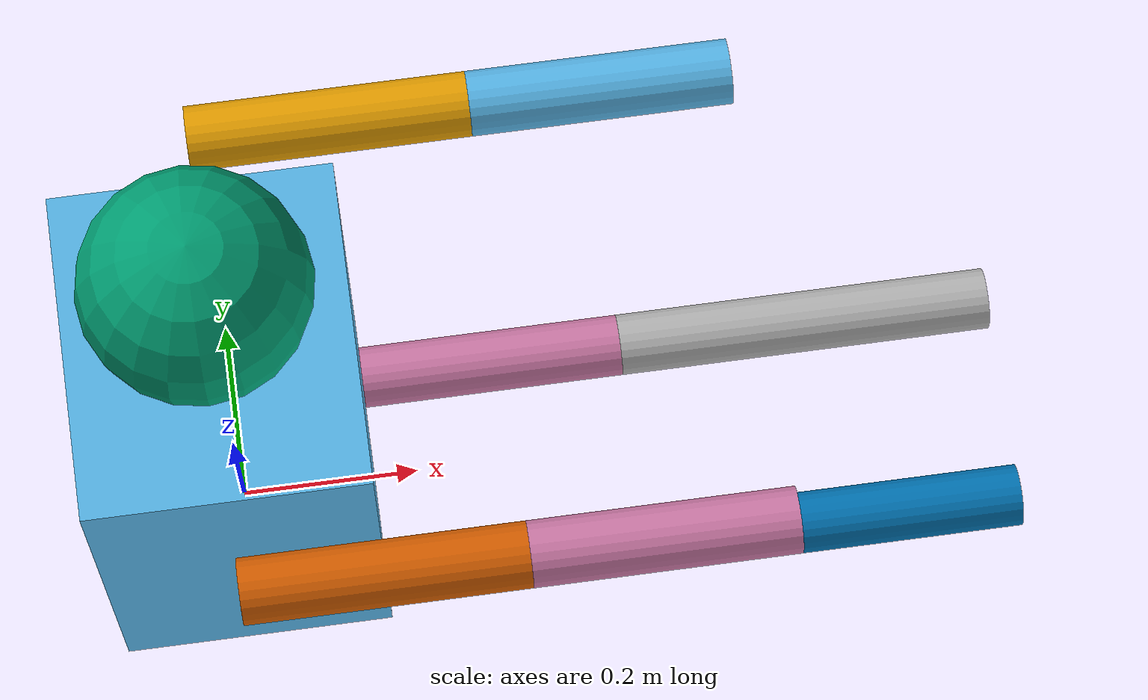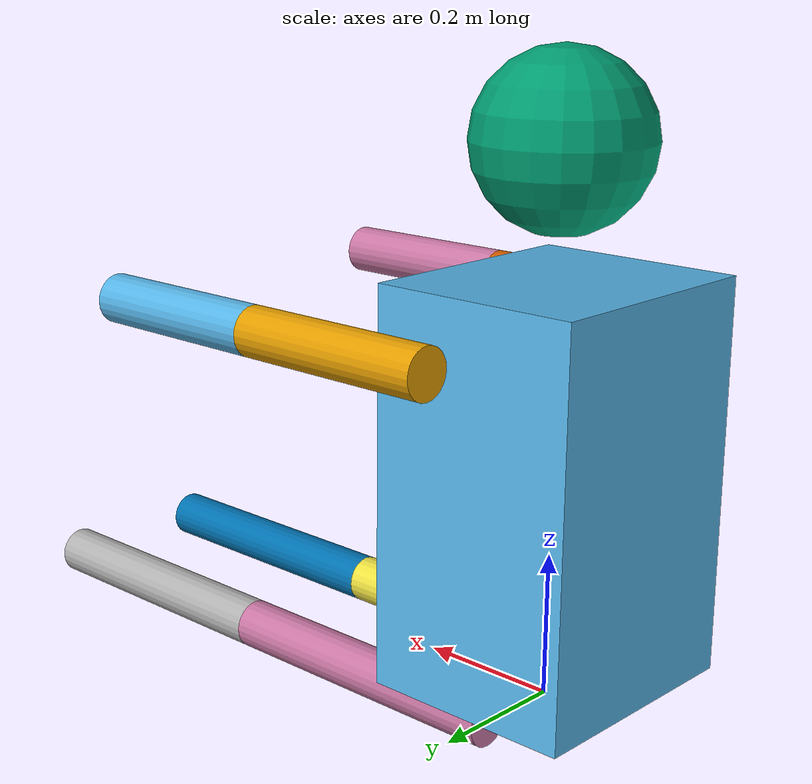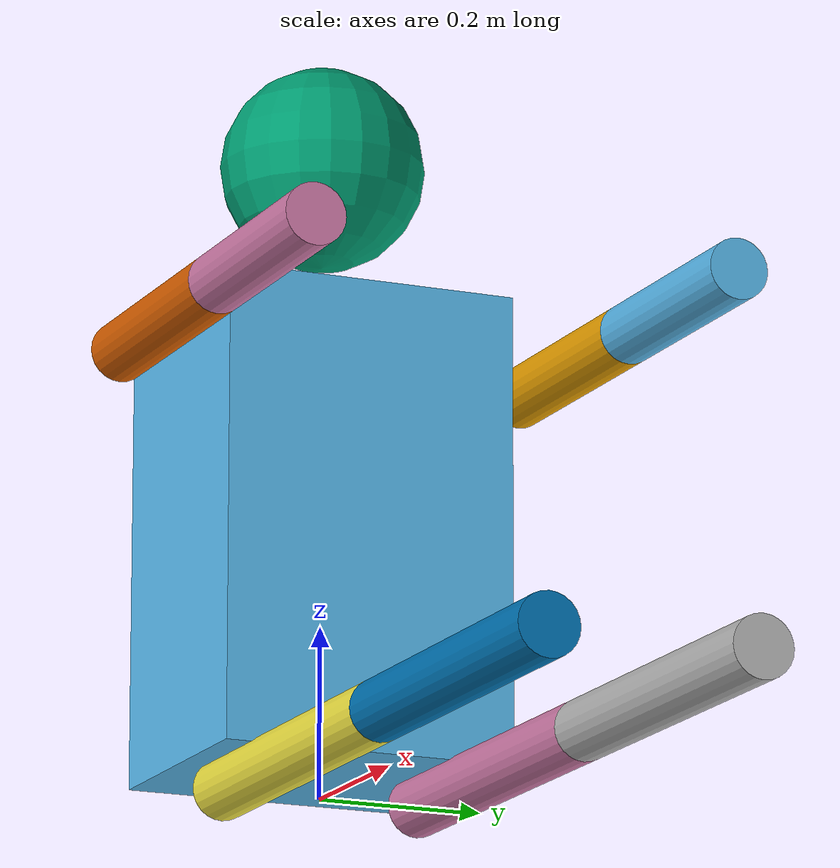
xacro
<?xml version="1.0"?>
<robot xmlns:xacro="http://www.ros.org/wiki/xacro" name="powersuit">

  <xacro:property name="arm_l1" value="0.30"/>
  <xacro:property name="arm_l2" value="0.28"/>
  <xacro:property name="leg_l1" value="0.45"/>
  <xacro:property name="leg_l2" value="0.43"/>

  <xacro:macro name="stub_inertial" params="mass">
    <inertial>
      <mass value="${mass}"/>
      <inertia ixx="0.01" ixy="0" ixz="0" iyy="0.01" iyz="0" izz="0.01"/>
    </inertial>
  </xacro:macro>

  <xacro:macro name="seg_link" params="name length mass">
    <link name="${name}">
      <visual>
        <origin xyz="${length/2} 0 0" rpy="0 ${pi/2} 0"/>
        <geometry><cylinder radius="0.035" length="${length}"/></geometry>
      </visual>
      <xacro:stub_inertial mass="${mass}"/>
    </link>
  </xacro:macro>

  <!-- limb: 2-link planar chain in the limb root frame (X forward, Y up-plane) -->
  <xacro:macro name="limb" params="prefix j1 j2 l1 l2 x y z">
    <joint name="${prefix}_root_joint" type="fixed">
      <parent link="torso"/>
      <child link="${prefix}_root"/>
      <origin xyz="${x} ${y} ${z}"/>
    </joint>
    <link name="${prefix}_root"><xacro:stub_inertial mass="0.2"/></link>

    <joint name="${prefix}_${j1}" type="revolute">
      <parent link="${prefix}_root"/>
      <child link="${prefix}_upper"/>
      <axis xyz="0 0 1"/>
      <limit lower="-2.62" upper="2.62" effort="60" velocity="6"/>
    </joint>
    <xacro:seg_link name="${prefix}_upper" length="${l1}" mass="1.2"/>

    <joint name="${prefix}_${j2}" type="revolute">
      <parent link="${prefix}_upper"/>
      <child link="${prefix}_lower"/>
      <origin xyz="${l1} 0 0"/>
      <axis xyz="0 0 1"/>
      <limit lower="-2.80" upper="2.80" effort="60" velocity="6"/>
    </joint>
    <xacro:seg_link name="${prefix}_lower" length="${l2}" mass="0.9"/>
  </xacro:macro>

  <!-- base + torso -->
  <link name="base_link"><xacro:stub_inertial mass="1.0"/></link>
  <joint name="torso_joint" type="fixed">
    <parent link="base_link"/>
    <child link="torso"/>
    <origin xyz="0 0 0.30"/>
  </joint>
  <link name="torso">
    <visual><geometry><box size="0.30 0.35 0.55"/></geometry></visual>
    <xacro:stub_inertial mass="8.0"/>
  </link>

  <!-- helmet -->
  <joint name="helmet_joint" type="fixed">
    <parent link="torso"/>
    <child link="helmet"/>
    <origin xyz="0 0 0.45"/>
  </joint>
  <link name="helmet">
    <visual><geometry><sphere radius="0.12"/></geometry></visual>
    <xacro:stub_inertial mass="1.5"/>
  </link>

  <!-- torso-rigid IMU on the flight pack (network-map §12.6) -->
  <joint name="imu_torso_joint" type="fixed">
    <parent link="torso"/>
    <child link="imu_torso"/>
    <origin xyz="-0.14 0 0.10"/>
  </joint>
  <link name="imu_torso"><xacro:stub_inertial mass="0.05"/></link>

  <!-- limbs; roots offset from torso center -->
  <xacro:limb prefix="arm_right" j1="elbow" j2="wrist"
              l1="${arm_l1}" l2="${arm_l2}" x="0.0" y="-0.25" z="0.20"/>
  <xacro:limb prefix="arm_left" j1="elbow" j2="wrist"
              l1="${arm_l1}" l2="${arm_l2}" x="0.0" y="0.25" z="0.20"/>
  <xacro:limb prefix="leg_right" j1="hip" j2="knee"
              l1="${leg_l1}" l2="${leg_l2}" x="0.0" y="-0.12" z="-0.30"/>
  <xacro:limb prefix="leg_left" j1="hip" j2="knee"
              l1="${leg_l1}" l2="${leg_l2}" x="0.0" y="0.12" z="-0.30"/>
</robot>
